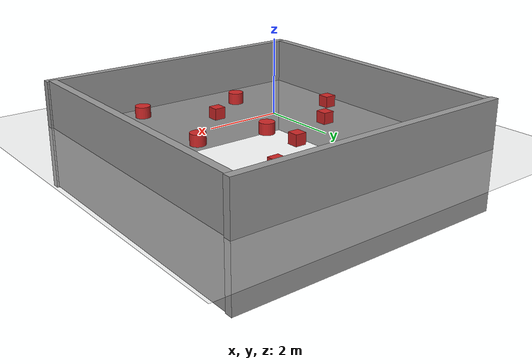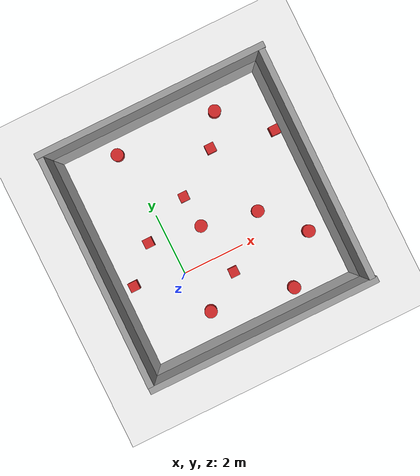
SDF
<sdf version="1.7">
 <world name="default">
  <light name="sun" type="directional">
   <pose>0 0 10 0 -0 0</pose>
   <diffuse>0.8 0.8 0.8 1</diffuse>
   <specular>0.2 0.2 0.2 1</specular>
   <attenuation>
    <range>1000</range>
    <constant>0.9</constant>
    <linear>0.01</linear>
    <quadratic>0.001</quadratic>
   </attenuation>
   <direction>-0.5 0.1 -0.9</direction>
   <spot><inner_angle>0</inner_angle><outer_angle>0</outer_angle><falloff>0</falloff></spot>
  </light>
  <model name="ground_plane">
   <static>1</static>
   <link name="link">
    <collision name="collision">
     <geometry><plane><normal>0 0 1</normal><size>100 100</size></plane></geometry>
     <surface>
      <contact><collide_bitmask>65535</collide_bitmask></contact>
      <friction><ode><mu>100</mu><mu2>50</mu2></ode></friction>
     </surface>
    </collision>
    <visual name="visual">
     <cast_shadows>0</cast_shadows>
     <geometry><plane><normal>0 0 1</normal><size>100 100</size></plane></geometry>
     <material>
      <script><uri>file://media/materials/scripts/gazebo.material</uri><name>Gazebo/Grey</name></script>
     </material>
    </visual>
   </link>
  </model>
  <gravity>0 0 -9.8</gravity>
  <magnetic_field>6e-06 2.3e-05 -4.2e-05</magnetic_field>
  <atmosphere type="adiabatic"/>
  <physics type="ode">
   <max_step_size>0.001</max_step_size>
   <real_time_factor>1</real_time_factor>
   <real_time_update_rate>1000</real_time_update_rate>
  </physics>
  <scene><ambient>0.4 0.4 0.4 1</ambient><background>0.7 0.7 0.7 1</background><shadows>1</shadows></scene>
  <spherical_coordinates>
   <surface_model>EARTH_WGS84</surface_model>
   <latitude_deg>0</latitude_deg>
   <longitude_deg>0</longitude_deg>
   <elevation>0</elevation>
   <heading_deg>0</heading_deg>
  </spherical_coordinates>
  <model name="unit_box">
   <pose>-1.56101 0.347564 0.15 0 -0 0</pose>
   <link name="link">
    <inertial>
     <mass>1</mass>
     <inertia>
      <ixx>0.166667</ixx>
      <ixy>0</ixy>
      <ixz>0</ixz>
      <iyy>0.166667</iyy>
      <iyz>0</iyz>
      <izz>0.166667</izz>
     </inertia>
    </inertial>
    <collision name="collision"><geometry><box><size>0.3 0.3 0.3</size></box></geometry></collision>
    <visual name="visual">
     <geometry><box><size>0.3 0.3 0.3</size></box></geometry>
     <material>
      <script><name>Gazebo/Red</name><uri>file://media/materials/scripts/gazebo.material</uri></script>
     </material>
    </visual>
   </link>
  </model>
  <model name="unit_cylinder">
   <pose>-0.230949 4.20967 0.149998 1e-06 -1e-06 0</pose>
   <link name="link">
    <inertial>
     <mass>1</mass>
     <inertia><ixx>0.145833</ixx><ixy>0</ixy><ixz>0</ixz><iyy>0.145833</iyy><iyz>0</iyz><izz>0.125</izz></inertia>
    </inertial>
    <collision name="collision">
     <geometry><cylinder><radius>0.2</radius><length>0.3</length></cylinder></geometry>
    </collision>
    <visual name="visual">
     <geometry><cylinder><radius>0.2</radius><length>0.3</length></cylinder></geometry>
     <material>
      <script><name>Gazebo/Red</name><uri>file://media/materials/scripts/gazebo.material</uri></script>
     </material>
    </visual>
   </link>
  </model>
  <model name="unit_box_0">
   <pose>1.03683 2.14762 0.15 0 -0 0</pose>
   <link name="link">
    <inertial>
     <mass>1</mass>
     <inertia>
      <ixx>0.166667</ixx>
      <ixy>0</ixy>
      <ixz>0</ixz>
      <iyy>0.166667</iyy>
      <iyz>0</iyz>
      <izz>0.166667</izz>
     </inertia>
    </inertial>
    <collision name="collision"><geometry><box><size>0.3 0.3 0.3</size></box></geometry></collision>
    <visual name="visual">
     <geometry><box><size>0.3 0.3 0.3</size></box></geometry>
     <material>
      <script><name>Gazebo/Red</name><uri>file://media/materials/scripts/gazebo.material</uri></script>
     </material>
    </visual>
   </link>
  </model>
  <model name="unit_box_1">
   <pose>4.45713 2.75737 0.15 0 -0 0</pose>
   <link name="link">
    <inertial>
     <mass>1</mass>
     <inertia>
      <ixx>0.166667</ixx>
      <ixy>0</ixy>
      <ixz>0</ixz>
      <iyy>0.166667</iyy>
      <iyz>0</iyz>
      <izz>0.166667</izz>
     </inertia>
    </inertial>
    <collision name="collision"><geometry><box><size>0.3 0.3 0.3</size></box></geometry></collision>
    <visual name="visual">
     <geometry><box><size>0.3 0.3 0.3</size></box></geometry>
     <material>
      <script><name>Gazebo/Red</name><uri>file://media/materials/scripts/gazebo.material</uri></script>
     </material>
    </visual>
   </link>
  </model>
  <model name="unit_cylinder_0">
   <pose>0.224793 -1.39826 0.149998 1e-06 -1e-06 0</pose>
   <link name="link">
    <inertial>
     <mass>1</mass>
     <inertia><ixx>0.145833</ixx><ixy>0</ixy><ixz>0</ixz><iyy>0.145833</iyy><iyz>0</iyz><izz>0.125</izz></inertia>
    </inertial>
    <collision name="collision">
     <geometry><cylinder><radius>0.2</radius><length>0.3</length></cylinder></geometry>
    </collision>
    <visual name="visual">
     <geometry><cylinder><radius>0.2</radius><length>0.3</length></cylinder></geometry>
     <material>
      <script><name>Gazebo/Red</name><uri>file://media/materials/scripts/gazebo.material</uri></script>
     </material>
    </visual>
   </link>
  </model>
  <model name="unit_cylinder_1">
   <pose>2.85722 -1.87176 0.149998 1e-06 -1e-06 0</pose>
   <link name="link">
    <inertial>
     <mass>1</mass>
     <inertia><ixx>0.145833</ixx><ixy>0</ixy><ixz>0</ixz><iyy>0.145833</iyy><iyz>0</iyz><izz>0.125</izz></inertia>
    </inertial>
    <collision name="collision">
     <geometry><cylinder><radius>0.2</radius><length>0.3</length></cylinder></geometry>
    </collision>
    <visual name="visual">
     <geometry><cylinder><radius>0.2</radius><length>0.3</length></cylinder></geometry>
     <material>
      <script><name>Gazebo/Red</name><uri>file://media/materials/scripts/gazebo.material</uri></script>
     </material>
    </visual>
   </link>
  </model>
  <model name="unit_box_2">
   <pose>2.4318 3.1247 0.15 0 -0 0</pose>
   <link name="link">
    <inertial>
     <mass>1</mass>
     <inertia>
      <ixx>0.166667</ixx>
      <ixy>0</ixy>
      <ixz>0</ixz>
      <iyy>0.166667</iyy>
      <iyz>0</iyz>
      <izz>0.166667</izz>
     </inertia>
    </inertial>
    <collision name="collision"><geometry><box><size>0.3 0.3 0.3</size></box></geometry></collision>
    <visual name="visual">
     <geometry><box><size>0.3 0.3 0.3</size></box></geometry>
     <material>
      <script><name>Gazebo/Red</name><uri>file://media/materials/scripts/gazebo.material</uri></script>
     </material>
    </visual>
   </link>
  </model>
  <model name="unit_box_3">
   <pose>1.39592 -0.612233 0.15 0 -0 0</pose>
   <link name="link">
    <inertial>
     <mass>1</mass>
     <inertia>
      <ixx>0.166667</ixx>
      <ixy>0</ixy>
      <ixz>0</ixz>
      <iyy>0.166667</iyy>
      <iyz>0</iyz>
      <izz>0.166667</izz>
     </inertia>
    </inertial>
    <collision name="collision"><geometry><box><size>0.3 0.3 0.3</size></box></geometry></collision>
    <visual name="visual">
     <geometry><box><size>0.3 0.3 0.3</size></box></geometry>
     <material>
      <script><name>Gazebo/Red</name><uri>file://media/materials/scripts/gazebo.material</uri></script>
     </material>
    </visual>
   </link>
  </model>
  <model name="unit_cylinder_2">
   <pose>2.88943 0.742466 0.149998 1e-06 -1e-06 0</pose>
   <link name="link">
    <inertial>
     <mass>1</mass>
     <inertia><ixx>0.145833</ixx><ixy>0</ixy><ixz>0</ixz><iyy>0.145833</iyy><iyz>0</iyz><izz>0.125</izz></inertia>
    </inertial>
    <collision name="collision">
     <geometry><cylinder><radius>0.2</radius><length>0.3</length></cylinder></geometry>
    </collision>
    <visual name="visual">
     <geometry><cylinder><radius>0.2</radius><length>0.3</length></cylinder></geometry>
     <material>
      <script><name>Gazebo/Red</name><uri>file://media/materials/scripts/gazebo.material</uri></script>
     </material>
    </visual>
   </link>
  </model>
  <model name="unit_cylinder_3">
   <pose>4.02759 -0.506085 0.149998 1e-06 -0 0</pose>
   <link name="link">
    <inertial>
     <mass>1</mass>
     <inertia><ixx>0.145833</ixx><ixy>0</ixy><ixz>0</ixz><iyy>0.145833</iyy><iyz>0</iyz><izz>0.125</izz></inertia>
    </inertial>
    <collision name="collision">
     <geometry><cylinder><radius>0.2</radius><length>0.3</length></cylinder></geometry>
    </collision>
    <visual name="visual">
     <geometry><cylinder><radius>0.2</radius><length>0.3</length></cylinder></geometry>
     <material>
      <script><name>Gazebo/Red</name><uri>file://media/materials/scripts/gazebo.material</uri></script>
     </material>
    </visual>
   </link>
  </model>
  <model name="unit_cylinder_2_clone">
   <pose>3.05282 4.09828 0.149992 -1e-06 -0 0</pose>
   <link name="link">
    <inertial>
     <mass>1</mass>
     <inertia><ixx>0.145833</ixx><ixy>0</ixy><ixz>0</ixz><iyy>0.145833</iyy><iyz>0</iyz><izz>0.125</izz></inertia>
    </inertial>
    <collision name="collision">
     <geometry><cylinder><radius>0.2</radius><length>0.3</length></cylinder></geometry>
    </collision>
    <visual name="visual">
     <geometry><cylinder><radius>0.2</radius><length>0.3</length></cylinder></geometry>
     <material>
      <script><name>Gazebo/Red</name><uri>file://media/materials/scripts/gazebo.material</uri></script>
     </material>
    </visual>
   </link>
  </model>
  <model name="unit_cylinder_2_clone_0">
   <pose>1.11538 1.10534 0.149998 1e-06 -0 0</pose>
   <link name="link">
    <inertial>
     <mass>1</mass>
     <inertia><ixx>0.145833</ixx><ixy>0</ixy><ixz>0</ixz><iyy>0.145833</iyy><iyz>0</iyz><izz>0.125</izz></inertia>
    </inertial>
    <collision name="collision">
     <geometry><cylinder><radius>0.2</radius><length>0.3</length></cylinder></geometry>
    </collision>
    <visual name="visual">
     <geometry><cylinder><radius>0.2</radius><length>0.3</length></cylinder></geometry>
     <material>
      <script><name>Gazebo/Red</name><uri>file://media/materials/scripts/gazebo.material</uri></script>
     </material>
    </visual>
   </link>
  </model>
  <model name="unit_box_3_clone">
   <pose>-0.569116 1.35432 0.15 0 -0 0</pose>
   <link name="link">
    <inertial>
     <mass>1</mass>
     <inertia>
      <ixx>0.166667</ixx>
      <ixy>0</ixy>
      <ixz>0</ixz>
      <iyy>0.166667</iyy>
      <iyz>0</iyz>
      <izz>0.166667</izz>
     </inertia>
    </inertial>
    <collision name="collision"><geometry><box><size>0.3 0.3 0.3</size></box></geometry></collision>
    <visual name="visual">
     <geometry><box><size>0.3 0.3 0.3</size></box></geometry>
     <material>
      <script><name>Gazebo/Red</name><uri>file://media/materials/scripts/gazebo.material</uri></script>
     </material>
    </visual>
   </link>
  </model>
  <model name="grey_wall">
   <static>1</static>
   <link name="link">
    <pose>0 0 1.4 0 -0 0</pose>
    <collision name="collision"><geometry><box><size>7.5 0.2 2.8</size></box></geometry></collision>
    <visual name="visual">
     <cast_shadows>0</cast_shadows>
     <geometry><box><size>7.5 0.2 2.8</size></box></geometry>
     <material>
      <script>
       <uri>model://grey_wall/materials/scripts</uri>
       <uri>model://grey_wall/materials/textures</uri>
       <name>vrc/grey_wall</name>
      </script>
     </material>
    </visual>
   </link>
   <pose>1.40659 5.08416 -1.58435 0 -0 0</pose>
  </model>
  <model name="grey_wall_clone">
   <static>1</static>
   <link name="link">
    <pose>0 0 1.4 0 -0 0</pose>
    <collision name="collision"><geometry><box><size>7.5 0.2 2.8</size></box></geometry></collision>
    <visual name="visual">
     <cast_shadows>0</cast_shadows>
     <geometry><box><size>7.5 0.2 2.8</size></box></geometry>
     <material>
      <script>
       <uri>model://grey_wall/materials/scripts</uri>
       <uri>model://grey_wall/materials/textures</uri>
       <name>vrc/grey_wall</name>
      </script>
     </material>
    </visual>
   </link>
   <pose>4.99115 1.24317 -1.59204 0 0 -1.57873</pose>
  </model>
  <model name="grey_wall_clone_clone">
   <static>1</static>
   <link name="link">
    <pose>0 0 1.4 0 -0 0</pose>
    <collision name="collision"><geometry><box><size>7.5 0.2 2.8</size></box></geometry></collision>
    <visual name="visual">
     <cast_shadows>0</cast_shadows>
     <geometry><box><size>7.5 0.2 2.8</size></box></geometry>
     <material>
      <script>
       <uri>model://grey_wall/materials/scripts</uri>
       <uri>model://grey_wall/materials/textures</uri>
       <name>vrc/grey_wall</name>
      </script>
     </material>
    </visual>
   </link>
   <pose>-2.26101 1.2545 -1.60391 0 0 -1.57873</pose>
  </model>
  <model name="grey_wall_clone_0">
   <static>1</static>
   <link name="link">
    <pose>0 0 1.4 0 -0 0</pose>
    <collision name="collision"><geometry><box><size>7.5 0.2 2.8</size></box></geometry></collision>
    <visual name="visual">
     <cast_shadows>0</cast_shadows>
     <geometry><box><size>7.5 0.2 2.8</size></box></geometry>
     <material>
      <script>
       <uri>model://grey_wall/materials/scripts</uri>
       <uri>model://grey_wall/materials/textures</uri>
       <name>vrc/grey_wall</name>
      </script>
     </material>
    </visual>
   </link>
   <pose>1.36157 -2.59017 -1.61523 0 -0 0</pose>
  </model>
 </world>
</sdf>
